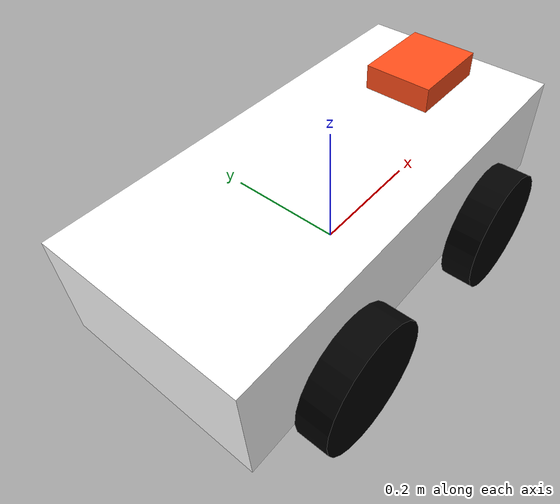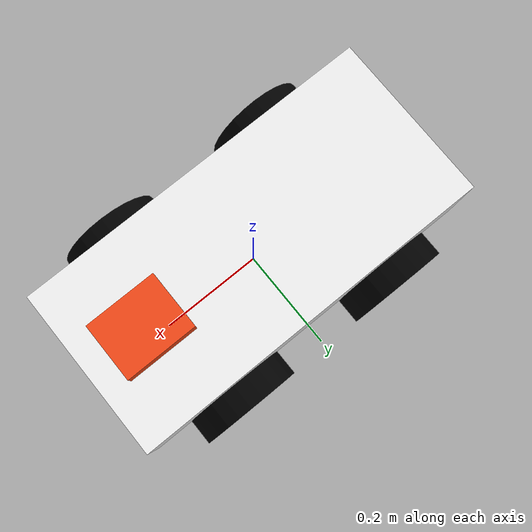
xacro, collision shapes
<?xml version="1.0"?>
<robot xmlns:xacro="http://www.ros.org/wiki/xacro" name="robot">

  <xacro:include filename="$(find rtk_gps_description)/urdf/materials.xacro"/>
  <xacro:include filename="$(find rtk_gps_description)/urdf/robot_core.xacro"/>
  <xacro:include filename="$(find rtk_gps_description)/urdf/lidar.xacro"/>
  <xacro:include filename="$(find rtk_gps_description)/urdf/sensor.xacro"/>
  <xacro:include filename="$(find rtk_gps_description)/urdf/wheel_macro.xacro"/>
  <xacro:include filename="$(find rtk_gps_description)/urdf/gps.xacro"/>
  <xacro:include filename="$(find rtk_gps_description)/urdf/gps2.xacro"/>
  <xacro:include filename="$(find rtk_gps_description)/urdf/imu.xacro"/>

  <xacro:include filename="$(find rtk_gps_description)/urdf/gazebo_controller_skid.xacro"/>

</robot>

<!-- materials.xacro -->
<robot xmlns:xacro="http://www.ros.org/wiki/xacro" >
    <material name="white">
        <color rgba="1 1 1 1"/>
    </material>

    <material name="orange">
        <color rgba="1 0.3 0.1 1"/>
    </material>

    <material name="blue">
        <color rgba="0.2 0.2 1 1"/>
    </material>

    <material name="black">
        <color rgba="0 0 0 1"/>
    </material>
</robot>

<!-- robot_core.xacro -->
<robot xmlns:xacro="http://www.ros.org/wiki/xacro" >

    <!--BASE LINK-->
    <link name="base_footprint">
    </link>

    <!--CHASSIS LINK-->
    <joint name="base_joint" type="fixed">
        <parent link = "base_footprint"/>
        <child link = "base_link"/>
        <origin xyz = "0 0 0"/>
    </joint>

    <link name = "base_link">
        <visual>
            <origin xyz= "0 0 0.085"/>
            <geometry>
                <mesh filename= "file:///home/rov-robot/colcon_ws/src/car_gps/rtk_gps_description/meshes/Chassis.stl" scale="0.001 0.001 0.001"/>
            </geometry>
            <material name ="white"/>
        </visual>
        <collision>
            <origin xyz= "0 0 0.085"/>
            <geometry>
                <box size = "0.69804 0.325 0.17 "/>
            </geometry>
        </collision>
        <inertial>
            <mass value="19.928" />
            <origin xyz="0 0 0" />
            <inertia ixx="0.286" ixy="0.0" ixz="0.0"
                iyy="1.109" iyz="0.0"
                izz="1.227" />
        </inertial>
    </link>

    <gazebo reference = "base_link">
        <material>
            Gazebo/White
        </material>
    </gazebo>

</robot>

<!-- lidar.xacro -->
<robot name="sensor_scan" xmlns:xacro="http://www.ros.org/wiki/xacro">
  <xacro:property name="distancex" value="0.04" />
  <xacro:property name="distancey" value="0.04" />
  <xacro:property name="distancez" value= "0.02"/>

  <!-- sensor joint -->
  <joint name="fixed_sensor_scan" type="fixed">
    <parent link="base_link"/>
    <child link="sensor_scan"/>
    <origin xyz = "0.33 0 0.07"/>
  </joint>

  <!-- sensor Link -->
  <link name="sensor_scan">
    <visual>
      <origin xyz="0 0 ${distancez/2}" rpy="0 0 0"/>
      <geometry>
        <box size="${distancex} ${distancey} ${distancez}"/>
      </geometry>
      <material name="black"/>
    </visual>

    <collision>
      <origin xyz="0 0 ${distancez/2}" rpy="0 0 0"/>
      <geometry>
        <box size="${distancex} ${distancey} ${distancez}"/>
      </geometry>
    </collision>

    <inertial>
      <origin xyz="0 0 ${distancez/2}" rpy="0 0 0"/>
      <mass value="1"/>
      <inertia
        ixx="1.0" ixy="0.0" ixz="0.0"
        iyy="1.0" iyz="0.0"
        izz="1.0"/>
    </inertial>
  </link>

  <gazebo reference="sensor_scan">
    <material>Gazebo/Black</material>
  </gazebo>

  <gazebo reference="sensor_scan">
    <sensor name="laser" type="ray">
      <always_on>true</always_on>
      <visualize>true</visualize>
      <update_rate>10</update_rate>
      <ray>
        <scan>
          <horizontal>
            <samples>180</samples>
            <resolution>1.000000</resolution>
            <min_angle>1.5708</min_angle>
            <max_angle>-1.5708</max_angle>
          </horizontal>
        </scan>
        <range>
          <min>0.25</min>
          <max>5.0</max>
          <resolution>0.015</resolution>
        </range>
        <noise>
          <type>gaussian</type>
          <mean>0.0</mean>
          <stddev>0.01</stddev>
        </noise>
      </ray>
      <plugin name="scan" filename="libgazebo_ros_ray_sensor.so">
        <ros>
          <remapping>~/out:=scan</remapping>
        </ros>
        <output_type>sensor_msgs/LaserScan</output_type>
        <frame_name>sensor_scan</frame_name>
      </plugin>
    </sensor>
  </gazebo>

</robot>

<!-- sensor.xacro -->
<robot name="sensor" xmlns:xacro="http://www.ros.org/wiki/xacro">
  <xacro:property name="distancex" value="0.135" />
  <xacro:property name="distancey" value="0.11" />
  <xacro:property name="distancez" value= "0.04"/>

  <!-- sensor joint -->
  <joint name="fixed" type="fixed">
    <parent link="base_link"/>
    <child link="sensor"/>
    <origin xyz = "0.23 0 0.17"/>
  </joint>

  <!-- sensor Link -->
  <link name="sensor">
    <visual>
      <origin xyz="0 0 ${distancez/2}" rpy="0 0 0"/>
      <geometry>
        <box size="${distancex} ${distancey} ${distancez}"/>
      </geometry>
      <material name="orange"/>
    </visual>

    <collision>
      <origin xyz="0 0 ${distancez/2}" rpy="0 0 0"/>
      <geometry>
        <box size="${distancex} ${distancey} ${distancez}"/>
      </geometry>
    </collision>

    <inertial>
      <origin xyz="0 0 ${distancez/2}" rpy="0 0 0"/>
      <mass value="1"/>
      <inertia
        ixx="1.0" ixy="0.0" ixz="0.0"
        iyy="1.0" iyz="0.0"
        izz="1.0"/>
    </inertial>
  </link>

  <gazebo reference="sensor">
    <material>Gazebo/Orange</material>
  </gazebo>

</robot>

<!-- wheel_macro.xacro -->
<robot xmlns:xacro="http://www.ros.org/wiki/xacro" >
    <xacro:macro name="wheel_macro" params="prefix x y z angle">
        <joint name="${prefix}_joint" type="continuous">
            <parent link="base_link"/>
            <child link="${prefix}_link"/>
            <origin xyz="${x} ${y} ${z}"/>
            <axis xyz="0 1 0"/>
        </joint>

        <link name="${prefix}_link">
            <visual>
                <geometry>
                    <mesh filename="file:///home/rov-robot/colcon_ws/src/car_gps/rtk_gps_description/meshes/wheels.stl" scale="0.001 0.001 0.001"/>
                </geometry>
                <material name="black"/>
            </visual>
            <collision>
                <origin xyz="0 0 0" rpy="${angle} 0 0"/>
                <geometry>
                    <cylinder radius = "0.1" length ="0.05"/>
                </geometry>
            </collision>
            <inertial>
                <origin xyz="0 0 0"/>
                <mass value="1.420"/>
                <inertia ixx="0.004" ixy="0.0" ixz="0.0" iyy="0.008" iyz="0.0" izz="0.004"/>
            </inertial>
        </link>

        <gazebo reference="${prefix}_link">
            <material>Gazebo/Gray</material>
            <mu1 value="0.35"/>
            <mu2 value="0.35"/>
        </gazebo>
    </xacro:macro>

    <xacro:wheel_macro prefix="left_wheel_front" x="0.175" y="0.1875" z="0" angle="-${pi/2}"/>
    <xacro:wheel_macro prefix="left_wheel_back" x="-0.175" y="0.1875" z="0" angle="-${pi/2}"/>
    <xacro:wheel_macro prefix="right_wheel_front" x="0.175" y="-0.1875" z="0" angle="${pi/2}"/>
    <xacro:wheel_macro prefix="right_wheel_back" x="-0.175" y="-0.1875" z="0" angle="${pi/2}"/>

    <gazebo>
        <plugin name="bytes_joint_state" filename="libgazebo_ros_joint_state_publisher.so">
        <ros>
            <remapping>~/out:=joint_states</remapping>
        </ros>
        <update_rate>30</update_rate>
        <joint_name>left_wheel_front_joint</joint_name>
        <joint_name>left_wheel_back_joint</joint_name>
        <joint_name>right_wheel_front_joint</joint_name>
        <joint_name>right_wheel_back_joint</joint_name>
        <body_name>base_link</body_name>
        <topic_name>joint_states</topic_name>
        </plugin>
    </gazebo>

</robot>
